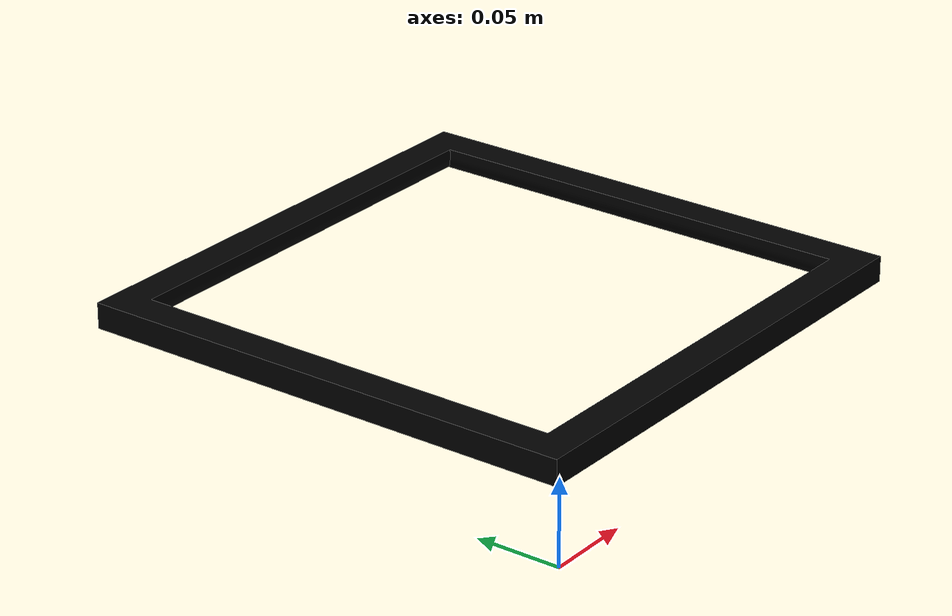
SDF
<?xml version="1.0" ?>
<sdf version="1.5">
  <model name="field">
    <pose>0 0 0.05 0 0 0</pose>
     <static>true</static>
    <link name="link">
      <inertial>
        <mass>1</mass>
        <inertia>
          <ixx>0.007488675</ixx>
          <iyy>0.007488675</iyy>
          <izz>0.01494</izz>
        </inertia>
      </inertial>

      <collision name="collision">
        <geometry>
          <mesh>
            <uri>model://field/meshes/Field.dae</uri>
          </mesh>
        </geometry>
      </collision>

      <visual name="visual">
        <geometry>
          <mesh>
            <uri>model://field/meshes/Field.dae</uri>
          </mesh>
        </geometry>
        <material> <!-- LED material -->
          <ambient>0 0 0 1</ambient>
          <diffuse>0 0 0 1</diffuse>
          <specular>0 0 0 0</specular>
          <emissive>0 1 0 1</emissive>
        </material> <!-- End LED material -->
      </visual>

    </link>
    <static>1</static>
  </model>
</sdf>
